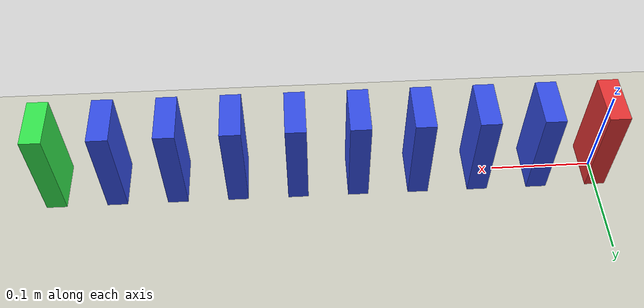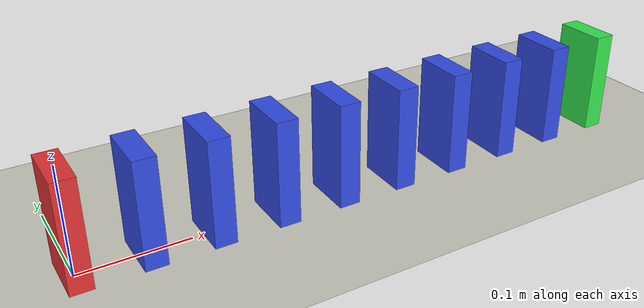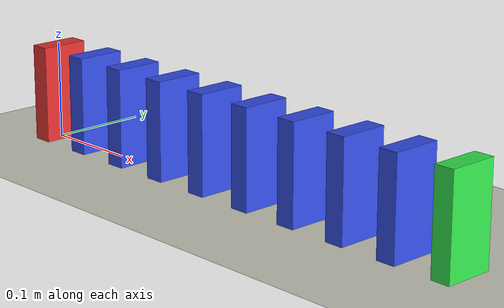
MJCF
<mujoco model="domino_row">
  <option timestep="0.002" gravity="0 0 -9.81"/>
  <visual>
    <global offwidth="1280" offheight="720"/>
  </visual>
  <worldbody>
    <light name="sun" pos="0.3 -0.5 1.5" dir="0 0.3 -1" diffuse="0.8 0.8 0.8"/>
    <geom name="floor" type="plane" size="2 2 0.1" rgba="0.8 0.8 0.75 1" friction="0.8 0.005 0.0001"/>
    <body name="domino1" pos="0.00 0 0.05">
      <freejoint name="j1"/>
      <geom name="g1" type="box" size="0.01 0.025 0.05" density="1000" friction="0.5 0.005 0.0001" rgba="0.9 0.2 0.2 1"/>
    </body>
    <body name="domino2" pos="0.06 0 0.05">
      <freejoint name="j2"/>
      <geom name="g2" type="box" size="0.01 0.025 0.05" density="1000" friction="0.5 0.005 0.0001" rgba="0.2 0.3 0.9 1"/>
    </body>
    <body name="domino3" pos="0.12 0 0.05">
      <freejoint name="j3"/>
      <geom name="g3" type="box" size="0.01 0.025 0.05" density="1000" friction="0.5 0.005 0.0001" rgba="0.2 0.3 0.9 1"/>
    </body>
    <body name="domino4" pos="0.18 0 0.05">
      <freejoint name="j4"/>
      <geom name="g4" type="box" size="0.01 0.025 0.05" density="1000" friction="0.5 0.005 0.0001" rgba="0.2 0.3 0.9 1"/>
    </body>
    <body name="domino5" pos="0.24 0 0.05">
      <freejoint name="j5"/>
      <geom name="g5" type="box" size="0.01 0.025 0.05" density="1000" friction="0.5 0.005 0.0001" rgba="0.2 0.3 0.9 1"/>
    </body>
    <body name="domino6" pos="0.30 0 0.05">
      <freejoint name="j6"/>
      <geom name="g6" type="box" size="0.01 0.025 0.05" density="1000" friction="0.5 0.005 0.0001" rgba="0.2 0.3 0.9 1"/>
    </body>
    <body name="domino7" pos="0.36 0 0.05">
      <freejoint name="j7"/>
      <geom name="g7" type="box" size="0.01 0.025 0.05" density="1000" friction="0.5 0.005 0.0001" rgba="0.2 0.3 0.9 1"/>
    </body>
    <body name="domino8" pos="0.42 0 0.05">
      <freejoint name="j8"/>
      <geom name="g8" type="box" size="0.01 0.025 0.05" density="1000" friction="0.5 0.005 0.0001" rgba="0.2 0.3 0.9 1"/>
    </body>
    <body name="domino9" pos="0.48 0 0.05">
      <freejoint name="j9"/>
      <geom name="g9" type="box" size="0.01 0.025 0.05" density="1000" friction="0.5 0.005 0.0001" rgba="0.2 0.3 0.9 1"/>
    </body>
    <body name="domino10" pos="0.54 0 0.05">
      <freejoint name="j10"/>
      <geom name="g10" type="box" size="0.01 0.025 0.05" density="1000" friction="0.5 0.005 0.0001" rgba="0.2 0.9 0.3 1"/>
    </body>
  </worldbody>
  <keyframe>
    <key name="start" qpos="0.00 0 0.05 1 0 0 0  0.06 0 0.05 1 0 0 0  0.12 0 0.05 1 0 0 0  0.18 0 0.05 1 0 0 0  0.24 0 0.05 1 0 0 0  0.30 0 0.05 1 0 0 0  0.36 0 0.05 1 0 0 0  0.42 0 0.05 1 0 0 0  0.48 0 0.05 1 0 0 0  0.54 0 0.05 1 0 0 0" qvel="0.2 0 0.04 0 4 0  0 0 0 0 0 0  0 0 0 0 0 0  0 0 0 0 0 0  0 0 0 0 0 0  0 0 0 0 0 0  0 0 0 0 0 0  0 0 0 0 0 0  0 0 0 0 0 0  0 0 0 0 0 0"/>
  </keyframe>
</mujoco>
